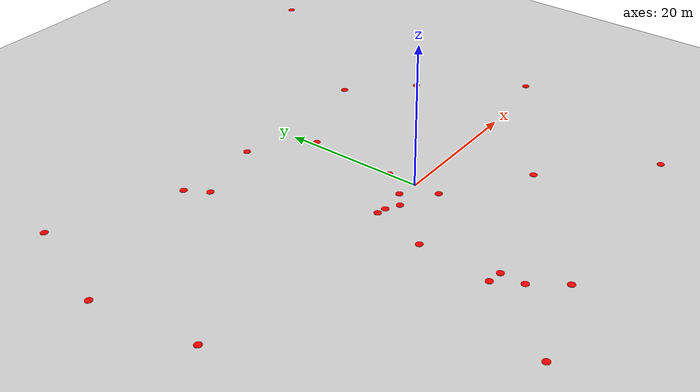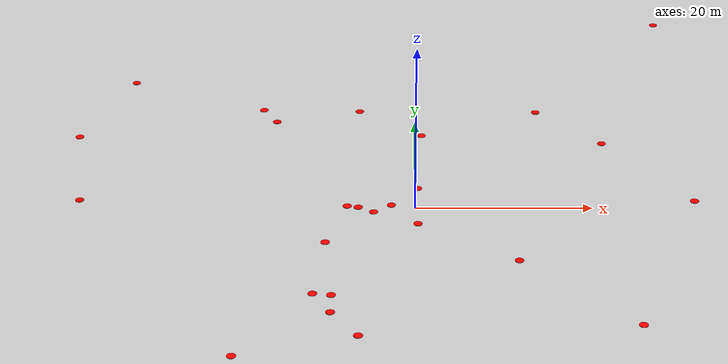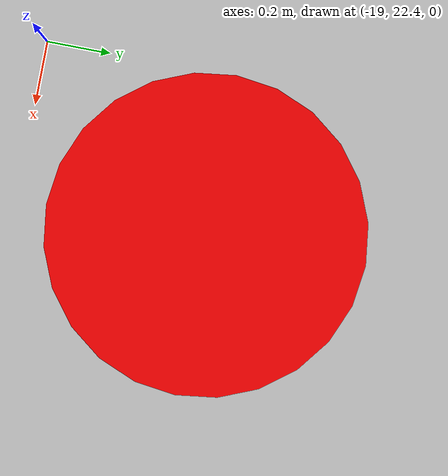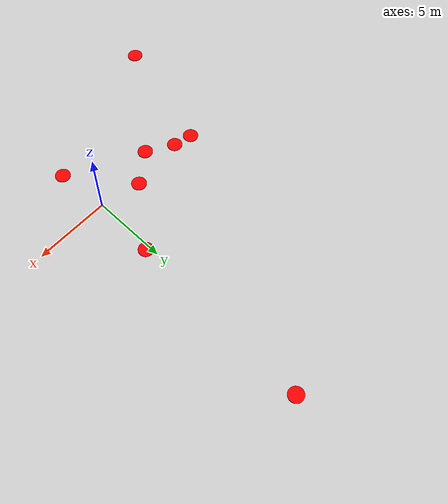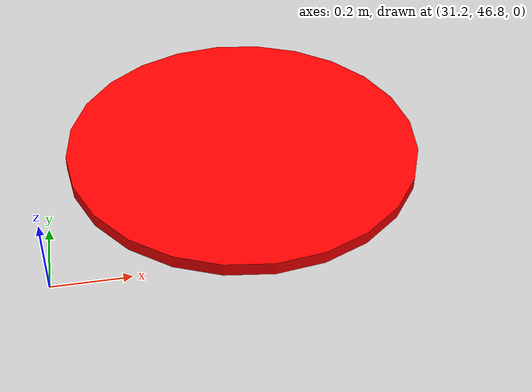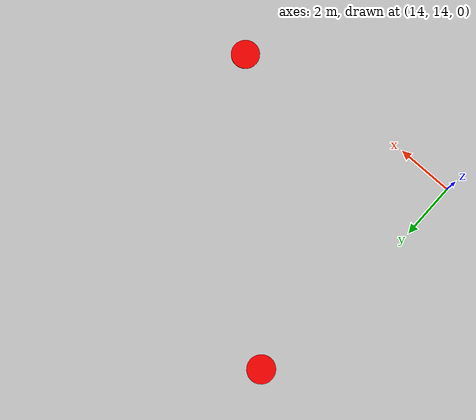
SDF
<?xml version='1.0' encoding='UTF-8'?>
<sdf version="1.7">
  <world name="disc_world">

    <plugin name="mrs_gazebo_static_transform_republisher_plugin"
            filename="libMrsGazeboCommonResources_StaticTransformRepublisher.so"/>

    <spherical_coordinates>
      <surface_model>EARTH_WGS84</surface_model>
      <latitude_deg>47.3977</latitude_deg>
      <longitude_deg>8.54559</longitude_deg>
      <elevation>0</elevation>
      <heading_deg>0</heading_deg>
    </spherical_coordinates>

    <physics name="default_physics" default="0" type="ode">
      <ode>
        <solver>
          <type>quick</type>
          <iters>10</iters>
          <sor>1.3</sor>
          <use_dynamic_moi_rescaling>0</use_dynamic_moi_rescaling>
        </solver>
        <constraints>
          <cfm>0</cfm>
          <erp>0.2</erp>
          <contact_max_correcting_vel>1000</contact_max_correcting_vel>
          <contact_surface_layer>0.001</contact_surface_layer>
        </constraints>
      </ode>
      <max_step_size>0.004</max_step_size>
      <real_time_factor>1</real_time_factor>
      <real_time_update_rate>250</real_time_update_rate>
    </physics>

    <scene>
      <shadows>false</shadows>
      <ambient>0.4 0.4 0.4 1</ambient>
      <background>0.7 0.7 0.7 1</background>
    </scene>

    <light name="sun" type="directional">
      <pose>0 0 1000 0.4 0.2 0</pose>
      <diffuse>1 1 1 1</diffuse>
      <specular>0.6 0.6 0.6 1</specular>
      <direction>0.1 0.1 -0.9</direction>
      <attenuation>
        <range>20</range>
        <constant>0.5</constant>
        <linear>0.01</linear>
        <quadratic>0.001</quadratic>
      </attenuation>
      <cast_shadows>1</cast_shadows>
    </light>

    <model name="ground_plane">
      <static>1</static>
      <link name="link">
        <collision name="collision">
          <pose>0 0 0 0 0 0</pose>
          <geometry>
            <plane>
              <normal>0 0 1</normal>
              <size>300 300</size>
            </plane>
          </geometry>
          <surface>
            <friction><ode><mu>1</mu><mu2>1</mu2></ode></friction>
          </surface>
          <max_contacts>10</max_contacts>
        </collision>
        <visual name="visual">
          <pose>0 0 0 0 0 0</pose>
          <cast_shadows>0</cast_shadows>
          <geometry>
            <plane>
              <normal>0 0 1</normal>
              <size>300 300</size>
            </plane>
          </geometry>
          <material>
            <script>
              <uri>file://media/materials/scripts/gazebo.material</uri>
              <n>Gazebo/Grey</n>
            </script>
          </material>
        </visual>
      </link>
    </model>

    <plugin name="mrs_gazebo_rviz_cam_synchronizer"
            filename="libMrsGazeboCommonResources_RvizCameraSynchronizer.so">
      <target_frame_id>gazebo_user_camera</target_frame_id>
      <world_origin_frame_id>uav1/gps_origin</world_origin_frame_id>
      <frame_to_follow>uav1</frame_to_follow>
    </plugin>

    <gravity>0 0 -9.8066</gravity>
    <magnetic_field>6e-06 2.3e-05 -4.2e-05</magnetic_field>
    <atmosphere type="adiabatic"/>
    <wind/>

    <!-- Bird's eye camera view at 150m -->
    <gui fullscreen="0">
      <camera name="camera">
        <pose>0 0 150 0 1.5707 0</pose>
        <view_controller>orbit</view_controller>
        <projection_type>perspective</projection_type>
      </camera>
    </gui>

    <model name="disc_1">
      <static>true</static>
      <pose>-6.75 22.75 0.01 0 0 0</pose>
      <link name="link">
        <collision name="collision">
          <pose>0 0 0 0 0 0</pose>
          <geometry>
            <cylinder>
              <radius>0.5</radius>
              <length>0.05</length>
            </cylinder>
          </geometry>
          <max_contacts>10</max_contacts>
          <surface>
            <contact><ode/></contact>
            <bounce/>
            <friction><torsional><ode/></torsional><ode/></friction>
          </surface>
        </collision>
        <visual name="visual">
          <geometry>
            <cylinder>
              <radius>0.5</radius>
              <length>0.05</length>
            </cylinder>
          </geometry>
          <material>
            <ambient>1 0 0 1</ambient>
            <diffuse>1 0 0 1</diffuse>
            <specular>0.1 0.1 0.1 1</specular>
            <emissive>0.4 0 0 1</emissive>
          </material>
        </visual>
        <self_collide>0</self_collide>
        <enable_wind>0</enable_wind>
        <kinematic>0</kinematic>
      </link>
    </model>

    <model name="disc_2">
      <static>true</static>
      <pose>-16.75 20.0 0.01 0 0 0</pose>
      <link name="link">
        <collision name="collision">
          <pose>0 0 0 0 0 0</pose>
          <geometry>
            <cylinder>
              <radius>0.5</radius>
              <length>0.05</length>
            </cylinder>
          </geometry>
          <max_contacts>10</max_contacts>
          <surface>
            <contact><ode/></contact>
            <bounce/>
            <friction><torsional><ode/></torsional><ode/></friction>
          </surface>
        </collision>
        <visual name="visual">
          <geometry>
            <cylinder>
              <radius>0.5</radius>
              <length>0.05</length>
            </cylinder>
          </geometry>
          <material>
            <ambient>1 0 0 1</ambient>
            <diffuse>1 0 0 1</diffuse>
            <specular>0.1 0.1 0.1 1</specular>
            <emissive>0.4 0 0 1</emissive>
          </material>
        </visual>
        <self_collide>0</self_collide>
        <enable_wind>0</enable_wind>
        <kinematic>0</kinematic>
      </link>
    </model>

    <model name="disc_3">
      <static>true</static>
      <pose>-18.75 -29.25 0.01 0 0 0</pose>
      <link name="link">
        <collision name="collision">
          <pose>0 0 0 0 0 0</pose>
          <geometry>
            <cylinder>
              <radius>0.5</radius>
              <length>0.05</length>
            </cylinder>
          </geometry>
          <max_contacts>10</max_contacts>
          <surface>
            <contact><ode/></contact>
            <bounce/>
            <friction><torsional><ode/></torsional><ode/></friction>
          </surface>
        </collision>
        <visual name="visual">
          <geometry>
            <cylinder>
              <radius>0.5</radius>
              <length>0.05</length>
            </cylinder>
          </geometry>
          <material>
            <ambient>1 0 0 1</ambient>
            <diffuse>1 0 0 1</diffuse>
            <specular>0.1 0.1 0.1 1</specular>
            <emissive>0.4 0 0 1</emissive>
          </material>
        </visual>
        <self_collide>0</self_collide>
        <enable_wind>0</enable_wind>
        <kinematic>0</kinematic>
      </link>
    </model>

    <model name="disc_4">
      <static>true</static>
      <pose>14.75 22.75 0.01 0 0 0</pose>
      <link name="link">
        <collision name="collision">
          <pose>0 0 0 0 0 0</pose>
          <geometry>
            <cylinder>
              <radius>0.5</radius>
              <length>0.05</length>
            </cylinder>
          </geometry>
          <max_contacts>10</max_contacts>
          <surface>
            <contact><ode/></contact>
            <bounce/>
            <friction><torsional><ode/></torsional><ode/></friction>
          </surface>
        </collision>
        <visual name="visual">
          <geometry>
            <cylinder>
              <radius>0.5</radius>
              <length>0.05</length>
            </cylinder>
          </geometry>
          <material>
            <ambient>1 0 0 1</ambient>
            <diffuse>1 0 0 1</diffuse>
            <specular>0.1 0.1 0.1 1</specular>
            <emissive>0.4 0 0 1</emissive>
          </material>
        </visual>
        <self_collide>0</self_collide>
        <enable_wind>0</enable_wind>
        <kinematic>0</kinematic>
      </link>
    </model>

    <model name="disc_5">
      <static>true</static>
      <pose>-9.0 -21.25 0.01 0 0 0</pose>
      <link name="link">
        <collision name="collision">
          <pose>0 0 0 0 0 0</pose>
          <geometry>
            <cylinder>
              <radius>0.5</radius>
              <length>0.05</length>
            </cylinder>
          </geometry>
          <max_contacts>10</max_contacts>
          <surface>
            <contact><ode/></contact>
            <bounce/>
            <friction><torsional><ode/></torsional><ode/></friction>
          </surface>
        </collision>
        <visual name="visual">
          <geometry>
            <cylinder>
              <radius>0.5</radius>
              <length>0.05</length>
            </cylinder>
          </geometry>
          <material>
            <ambient>1 0 0 1</ambient>
            <diffuse>1 0 0 1</diffuse>
            <specular>0.1 0.1 0.1 1</specular>
            <emissive>0.4 0 0 1</emissive>
          </material>
        </visual>
        <self_collide>0</self_collide>
        <enable_wind>0</enable_wind>
        <kinematic>0</kinematic>
      </link>
    </model>

    <model name="disc_6">
      <static>true</static>
      <pose>0.25 4.25 0.01 0 0 0</pose>
      <link name="link">
        <collision name="collision">
          <pose>0 0 0 0 0 0</pose>
          <geometry>
            <cylinder>
              <radius>0.5</radius>
              <length>0.05</length>
            </cylinder>
          </geometry>
          <max_contacts>10</max_contacts>
          <surface>
            <contact><ode/></contact>
            <bounce/>
            <friction><torsional><ode/></torsional><ode/></friction>
          </surface>
        </collision>
        <visual name="visual">
          <geometry>
            <cylinder>
              <radius>0.5</radius>
              <length>0.05</length>
            </cylinder>
          </geometry>
          <material>
            <ambient>1 0 0 1</ambient>
            <diffuse>1 0 0 1</diffuse>
            <specular>0.1 0.1 0.1 1</specular>
            <emissive>0.4 0 0 1</emissive>
          </material>
        </visual>
        <self_collide>0</self_collide>
        <enable_wind>0</enable_wind>
        <kinematic>0</kinematic>
      </link>
    </model>

    <model name="disc_7">
      <static>true</static>
      <pose>-10.0 -7.5 0.01 0 0 0</pose>
      <link name="link">
        <collision name="collision">
          <pose>0 0 0 0 0 0</pose>
          <geometry>
            <cylinder>
              <radius>0.5</radius>
              <length>0.05</length>
            </cylinder>
          </geometry>
          <max_contacts>10</max_contacts>
          <surface>
            <contact><ode/></contact>
            <bounce/>
            <friction><torsional><ode/></torsional><ode/></friction>
          </surface>
        </collision>
        <visual name="visual">
          <geometry>
            <cylinder>
              <radius>0.5</radius>
              <length>0.05</length>
            </cylinder>
          </geometry>
          <material>
            <ambient>1 0 0 1</ambient>
            <diffuse>1 0 0 1</diffuse>
            <specular>0.1 0.1 0.1 1</specular>
            <emissive>0.4 0 0 1</emissive>
          </material>
        </visual>
        <self_collide>0</self_collide>
        <enable_wind>0</enable_wind>
        <kinematic>0</kinematic>
      </link>
    </model>

    <model name="disc_8">
      <static>true</static>
      <pose>-38.25 1.25 0.01 0 0 0</pose>
      <link name="link">
        <collision name="collision">
          <pose>0 0 0 0 0 0</pose>
          <geometry>
            <cylinder>
              <radius>0.5</radius>
              <length>0.05</length>
            </cylinder>
          </geometry>
          <max_contacts>10</max_contacts>
          <surface>
            <contact><ode/></contact>
            <bounce/>
            <friction><torsional><ode/></torsional><ode/></friction>
          </surface>
        </collision>
        <visual name="visual">
          <geometry>
            <cylinder>
              <radius>0.5</radius>
              <length>0.05</length>
            </cylinder>
          </geometry>
          <material>
            <ambient>1 0 0 1</ambient>
            <diffuse>1 0 0 1</diffuse>
            <specular>0.1 0.1 0.1 1</specular>
            <emissive>0.4 0 0 1</emissive>
          </material>
        </visual>
        <self_collide>0</self_collide>
        <enable_wind>0</enable_wind>
        <kinematic>0</kinematic>
      </link>
    </model>

    <model name="disc_9">
      <static>true</static>
      <pose>-4.75 -1.0 0.01 0 0 0</pose>
      <link name="link">
        <collision name="collision">
          <pose>0 0 0 0 0 0</pose>
          <geometry>
            <cylinder>
              <radius>0.5</radius>
              <length>0.05</length>
            </cylinder>
          </geometry>
          <max_contacts>10</max_contacts>
          <surface>
            <contact><ode/></contact>
            <bounce/>
            <friction><torsional><ode/></torsional><ode/></friction>
          </surface>
        </collision>
        <visual name="visual">
          <geometry>
            <cylinder>
              <radius>0.5</radius>
              <length>0.05</length>
            </cylinder>
          </geometry>
          <material>
            <ambient>1 0 0 1</ambient>
            <diffuse>1 0 0 1</diffuse>
            <specular>0.1 0.1 0.1 1</specular>
            <emissive>0.4 0 0 1</emissive>
          </material>
        </visual>
        <self_collide>0</self_collide>
        <enable_wind>0</enable_wind>
        <kinematic>0</kinematic>
      </link>
    </model>

    <model name="disc_10">
      <static>true</static>
      <pose>-9.0 -18.0 0.01 0 0 0</pose>
      <link name="link">
        <collision name="collision">
          <pose>0 0 0 0 0 0</pose>
          <geometry>
            <cylinder>
              <radius>0.5</radius>
              <length>0.05</length>
            </cylinder>
          </geometry>
          <max_contacts>10</max_contacts>
          <surface>
            <contact><ode/></contact>
            <bounce/>
            <friction><torsional><ode/></torsional><ode/></friction>
          </surface>
        </collision>
        <visual name="visual">
          <geometry>
            <cylinder>
              <radius>0.5</radius>
              <length>0.05</length>
            </cylinder>
          </geometry>
          <material>
            <ambient>1 0 0 1</ambient>
            <diffuse>1 0 0 1</diffuse>
            <specular>0.1 0.1 0.1 1</specular>
            <emissive>0.4 0 0 1</emissive>
          </material>
        </visual>
        <self_collide>0</self_collide>
        <enable_wind>0</enable_wind>
        <kinematic>0</kinematic>
      </link>
    </model>

    <model name="disc_11">
      <static>true</static>
      <pose>0.25 -3.5 0.01 0 0 0</pose>
      <link name="link">
        <collision name="collision">
          <pose>0 0 0 0 0 0</pose>
          <geometry>
            <cylinder>
              <radius>0.5</radius>
              <length>0.05</length>
            </cylinder>
          </geometry>
          <max_contacts>10</max_contacts>
          <surface>
            <contact><ode/></contact>
            <bounce/>
            <friction><torsional><ode/></torsional><ode/></friction>
          </surface>
        </collision>
        <visual name="visual">
          <geometry>
            <cylinder>
              <radius>0.5</radius>
              <length>0.05</length>
            </cylinder>
          </geometry>
          <material>
            <ambient>1 0 0 1</ambient>
            <diffuse>1 0 0 1</diffuse>
            <specular>0.1 0.1 0.1 1</specular>
            <emissive>0.4 0 0 1</emissive>
          </material>
        </visual>
        <self_collide>0</self_collide>
        <enable_wind>0</enable_wind>
        <kinematic>0</kinematic>
      </link>
    </model>

    <model name="disc_12">
      <static>true</static>
      <pose>23.5 -23.25 0.01 0 0 0</pose>
      <link name="link">
        <collision name="collision">
          <pose>0 0 0 0 0 0</pose>
          <geometry>
            <cylinder>
              <radius>0.5</radius>
              <length>0.05</length>
            </cylinder>
          </geometry>
          <max_contacts>10</max_contacts>
          <surface>
            <contact><ode/></contact>
            <bounce/>
            <friction><torsional><ode/></torsional><ode/></friction>
          </surface>
        </collision>
        <visual name="visual">
          <geometry>
            <cylinder>
              <radius>0.5</radius>
              <length>0.05</length>
            </cylinder>
          </geometry>
          <material>
            <ambient>1 0 0 1</ambient>
            <diffuse>1 0 0 1</diffuse>
            <specular>0.1 0.1 0.1 1</specular>
            <emissive>0.4 0 0 1</emissive>
          </material>
        </visual>
        <self_collide>0</self_collide>
        <enable_wind>0</enable_wind>
        <kinematic>0</kinematic>
      </link>
    </model>

    <model name="disc_13">
      <static>true</static>
      <pose>-18.5 23.0 0.01 0 0 0</pose>
      <link name="link">
        <collision name="collision">
          <pose>0 0 0 0 0 0</pose>
          <geometry>
            <cylinder>
              <radius>0.5</radius>
              <length>0.05</length>
            </cylinder>
          </geometry>
          <max_contacts>10</max_contacts>
          <surface>
            <contact><ode/></contact>
            <bounce/>
            <friction><torsional><ode/></torsional><ode/></friction>
          </surface>
        </collision>
        <visual name="visual">
          <geometry>
            <cylinder>
              <radius>0.5</radius>
              <length>0.05</length>
            </cylinder>
          </geometry>
          <material>
            <ambient>1 0 0 1</ambient>
            <diffuse>1 0 0 1</diffuse>
            <specular>0.1 0.1 0.1 1</specular>
            <emissive>0.4 0 0 1</emissive>
          </material>
        </visual>
        <self_collide>0</self_collide>
        <enable_wind>0</enable_wind>
        <kinematic>0</kinematic>
      </link>
    </model>

    <model name="disc_14">
      <static>true</static>
      <pose>-11.0 -17.75 0.01 0 0 0</pose>
      <link name="link">
        <collision name="collision">
          <pose>0 0 0 0 0 0</pose>
          <geometry>
            <cylinder>
              <radius>0.5</radius>
              <length>0.05</length>
            </cylinder>
          </geometry>
          <max_contacts>10</max_contacts>
          <surface>
            <contact><ode/></contact>
            <bounce/>
            <friction><torsional><ode/></torsional><ode/></friction>
          </surface>
        </collision>
        <visual name="visual">
          <geometry>
            <cylinder>
              <radius>0.5</radius>
              <length>0.05</length>
            </cylinder>
          </geometry>
          <material>
            <ambient>1 0 0 1</ambient>
            <diffuse>1 0 0 1</diffuse>
            <specular>0.1 0.1 0.1 1</specular>
            <emissive>0.4 0 0 1</emissive>
          </material>
        </visual>
        <self_collide>0</self_collide>
        <enable_wind>0</enable_wind>
        <kinematic>0</kinematic>
      </link>
    </model>

    <model name="disc_15">
      <static>true</static>
      <pose>0.75 16.75 0.01 0 0 0</pose>
      <link name="link">
        <collision name="collision">
          <pose>0 0 0 0 0 0</pose>
          <geometry>
            <cylinder>
              <radius>0.5</radius>
              <length>0.05</length>
            </cylinder>
          </geometry>
          <max_contacts>10</max_contacts>
          <surface>
            <contact><ode/></contact>
            <bounce/>
            <friction><torsional><ode/></torsional><ode/></friction>
          </surface>
        </collision>
        <visual name="visual">
          <geometry>
            <cylinder>
              <radius>0.5</radius>
              <length>0.05</length>
            </cylinder>
          </geometry>
          <material>
            <ambient>1 0 0 1</ambient>
            <diffuse>1 0 0 1</diffuse>
            <specular>0.1 0.1 0.1 1</specular>
            <emissive>0.4 0 0 1</emissive>
          </material>
        </visual>
        <self_collide>0</self_collide>
        <enable_wind>0</enable_wind>
        <kinematic>0</kinematic>
      </link>
    </model>

    <model name="disc_16">
      <static>true</static>
      <pose>-2.75 0.5 0.01 0 0 0</pose>
      <link name="link">
        <collision name="collision">
          <pose>0 0 0 0 0 0</pose>
          <geometry>
            <cylinder>
              <radius>0.5</radius>
              <length>0.05</length>
            </cylinder>
          </geometry>
          <max_contacts>10</max_contacts>
          <surface>
            <contact><ode/></contact>
            <bounce/>
            <friction><torsional><ode/></torsional><ode/></friction>
          </surface>
        </collision>
        <visual name="visual">
          <geometry>
            <cylinder>
              <radius>0.5</radius>
              <length>0.05</length>
            </cylinder>
          </geometry>
          <material>
            <ambient>1 0 0 1</ambient>
            <diffuse>1 0 0 1</diffuse>
            <specular>0.1 0.1 0.1 1</specular>
            <emissive>0.4 0 0 1</emissive>
          </material>
        </visual>
        <self_collide>0</self_collide>
        <enable_wind>0</enable_wind>
        <kinematic>0</kinematic>
      </link>
    </model>

    <model name="disc_17">
      <static>true</static>
      <pose>-6.0 -25.5 0.01 0 0 0</pose>
      <link name="link">
        <collision name="collision">
          <pose>0 0 0 0 0 0</pose>
          <geometry>
            <cylinder>
              <radius>0.5</radius>
              <length>0.05</length>
            </cylinder>
          </geometry>
          <max_contacts>10</max_contacts>
          <surface>
            <contact><ode/></contact>
            <bounce/>
            <friction><torsional><ode/></torsional><ode/></friction>
          </surface>
        </collision>
        <visual name="visual">
          <geometry>
            <cylinder>
              <radius>0.5</radius>
              <length>0.05</length>
            </cylinder>
          </geometry>
          <material>
            <ambient>1 0 0 1</ambient>
            <diffuse>1 0 0 1</diffuse>
            <specular>0.1 0.1 0.1 1</specular>
            <emissive>0.4 0 0 1</emissive>
          </material>
        </visual>
        <self_collide>0</self_collide>
        <enable_wind>0</enable_wind>
        <kinematic>0</kinematic>
      </link>
    </model>

    <model name="disc_18">
      <static>true</static>
      <pose>-6.5 0.0 0.01 0 0 0</pose>
      <link name="link">
        <collision name="collision">
          <pose>0 0 0 0 0 0</pose>
          <geometry>
            <cylinder>
              <radius>0.5</radius>
              <length>0.05</length>
            </cylinder>
          </geometry>
          <max_contacts>10</max_contacts>
          <surface>
            <contact><ode/></contact>
            <bounce/>
            <friction><torsional><ode/></torsional><ode/></friction>
          </surface>
        </collision>
        <visual name="visual">
          <geometry>
            <cylinder>
              <radius>0.5</radius>
              <length>0.05</length>
            </cylinder>
          </geometry>
          <material>
            <ambient>1 0 0 1</ambient>
            <diffuse>1 0 0 1</diffuse>
            <specular>0.1 0.1 0.1 1</specular>
            <emissive>0.4 0 0 1</emissive>
          </material>
        </visual>
        <self_collide>0</self_collide>
        <enable_wind>0</enable_wind>
        <kinematic>0</kinematic>
      </link>
    </model>

    <model name="disc_19">
      <static>true</static>
      <pose>-7.75 0.25 0.01 0 0 0</pose>
      <link name="link">
        <collision name="collision">
          <pose>0 0 0 0 0 0</pose>
          <geometry>
            <cylinder>
              <radius>0.5</radius>
              <length>0.05</length>
            </cylinder>
          </geometry>
          <max_contacts>10</max_contacts>
          <surface>
            <contact><ode/></contact>
            <bounce/>
            <friction><torsional><ode/></torsional><ode/></friction>
          </surface>
        </collision>
        <visual name="visual">
          <geometry>
            <cylinder>
              <radius>0.5</radius>
              <length>0.05</length>
            </cylinder>
          </geometry>
          <material>
            <ambient>1 0 0 1</ambient>
            <diffuse>1 0 0 1</diffuse>
            <specular>0.1 0.1 0.1 1</specular>
            <emissive>0.4 0 0 1</emissive>
          </material>
        </visual>
        <self_collide>0</self_collide>
        <enable_wind>0</enable_wind>
        <kinematic>0</kinematic>
      </link>
    </model>

    <model name="disc_20">
      <static>true</static>
      <pose>11.25 -11.0 0.01 0 0 0</pose>
      <link name="link">
        <collision name="collision">
          <pose>0 0 0 0 0 0</pose>
          <geometry>
            <cylinder>
              <radius>0.5</radius>
              <length>0.05</length>
            </cylinder>
          </geometry>
          <max_contacts>10</max_contacts>
          <surface>
            <contact><ode/></contact>
            <bounce/>
            <friction><torsional><ode/></torsional><ode/></friction>
          </surface>
        </collision>
        <visual name="visual">
          <geometry>
            <cylinder>
              <radius>0.5</radius>
              <length>0.05</length>
            </cylinder>
          </geometry>
          <material>
            <ambient>1 0 0 1</ambient>
            <diffuse>1 0 0 1</diffuse>
            <specular>0.1 0.1 0.1 1</specular>
            <emissive>0.4 0 0 1</emissive>
          </material>
        </visual>
        <self_collide>0</self_collide>
        <enable_wind>0</enable_wind>
        <kinematic>0</kinematic>
      </link>
    </model>

    <model name="disc_21">
      <static>true</static>
      <pose>-40.25 16.0 0.01 0 0 0</pose>
      <link name="link">
        <collision name="collision">
          <pose>0 0 0 0 0 0</pose>
          <geometry>
            <cylinder>
              <radius>0.5</radius>
              <length>0.05</length>
            </cylinder>
          </geometry>
          <max_contacts>10</max_contacts>
          <surface>
            <contact><ode/></contact>
            <bounce/>
            <friction><torsional><ode/></torsional><ode/></friction>
          </surface>
        </collision>
        <visual name="visual">
          <geometry>
            <cylinder>
              <radius>0.5</radius>
              <length>0.05</length>
            </cylinder>
          </geometry>
          <material>
            <ambient>1 0 0 1</ambient>
            <diffuse>1 0 0 1</diffuse>
            <specular>0.1 0.1 0.1 1</specular>
            <emissive>0.4 0 0 1</emissive>
          </material>
        </visual>
        <self_collide>0</self_collide>
        <enable_wind>0</enable_wind>
        <kinematic>0</kinematic>
      </link>
    </model>

    <model name="disc_22">
      <static>true</static>
      <pose>31.75 1.75 0.01 0 0 0</pose>
      <link name="link">
        <collision name="collision">
          <pose>0 0 0 0 0 0</pose>
          <geometry>
            <cylinder>
              <radius>0.5</radius>
              <length>0.05</length>
            </cylinder>
          </geometry>
          <max_contacts>10</max_contacts>
          <surface>
            <contact><ode/></contact>
            <bounce/>
            <friction><torsional><ode/></torsional><ode/></friction>
          </surface>
        </collision>
        <visual name="visual">
          <geometry>
            <cylinder>
              <radius>0.5</radius>
              <length>0.05</length>
            </cylinder>
          </geometry>
          <material>
            <ambient>1 0 0 1</ambient>
            <diffuse>1 0 0 1</diffuse>
            <specular>0.1 0.1 0.1 1</specular>
            <emissive>0.4 0 0 1</emissive>
          </material>
        </visual>
        <self_collide>0</self_collide>
        <enable_wind>0</enable_wind>
        <kinematic>0</kinematic>
      </link>
    </model>

    <model name="disc_23">
      <static>true</static>
      <pose>31.75 47.25 0.01 0 0 0</pose>
      <link name="link">
        <collision name="collision">
          <pose>0 0 0 0 0 0</pose>
          <geometry>
            <cylinder>
              <radius>0.5</radius>
              <length>0.05</length>
            </cylinder>
          </geometry>
          <max_contacts>10</max_contacts>
          <surface>
            <contact><ode/></contact>
            <bounce/>
            <friction><torsional><ode/></torsional><ode/></friction>
          </surface>
        </collision>
        <visual name="visual">
          <geometry>
            <cylinder>
              <radius>0.5</radius>
              <length>0.05</length>
            </cylinder>
          </geometry>
          <material>
            <ambient>1 0 0 1</ambient>
            <diffuse>1 0 0 1</diffuse>
            <specular>0.1 0.1 0.1 1</specular>
            <emissive>0.4 0 0 1</emissive>
          </material>
        </visual>
        <self_collide>0</self_collide>
        <enable_wind>0</enable_wind>
        <kinematic>0</kinematic>
      </link>
    </model>

    <model name="disc_24">
      <static>true</static>
      <pose>22.25 15.0 0.01 0 0 0</pose>
      <link name="link">
        <collision name="collision">
          <pose>0 0 0 0 0 0</pose>
          <geometry>
            <cylinder>
              <radius>0.5</radius>
              <length>0.05</length>
            </cylinder>
          </geometry>
          <max_contacts>10</max_contacts>
          <surface>
            <contact><ode/></contact>
            <bounce/>
            <friction><torsional><ode/></torsional><ode/></friction>
          </surface>
        </collision>
        <visual name="visual">
          <geometry>
            <cylinder>
              <radius>0.5</radius>
              <length>0.05</length>
            </cylinder>
          </geometry>
          <material>
            <ambient>1 0 0 1</ambient>
            <diffuse>1 0 0 1</diffuse>
            <specular>0.1 0.1 0.1 1</specular>
            <emissive>0.4 0 0 1</emissive>
          </material>
        </visual>
        <self_collide>0</self_collide>
        <enable_wind>0</enable_wind>
        <kinematic>0</kinematic>
      </link>
    </model>

    <model name="disc_25">
      <static>true</static>
      <pose>-35.0 30.0 0.01 0 0 0</pose>
      <link name="link">
        <collision name="collision">
          <pose>0 0 0 0 0 0</pose>
          <geometry>
            <cylinder>
              <radius>0.5</radius>
              <length>0.05</length>
            </cylinder>
          </geometry>
          <max_contacts>10</max_contacts>
          <surface>
            <contact><ode/></contact>
            <bounce/>
            <friction><torsional><ode/></torsional><ode/></friction>
          </surface>
        </collision>
        <visual name="visual">
          <geometry>
            <cylinder>
              <radius>0.5</radius>
              <length>0.05</length>
            </cylinder>
          </geometry>
          <material>
            <ambient>1 0 0 1</ambient>
            <diffuse>1 0 0 1</diffuse>
            <specular>0.1 0.1 0.1 1</specular>
            <emissive>0.4 0 0 1</emissive>
          </material>
        </visual>
        <self_collide>0</self_collide>
        <enable_wind>0</enable_wind>
        <kinematic>0</kinematic>
      </link>
    </model>

  </world>
</sdf>
